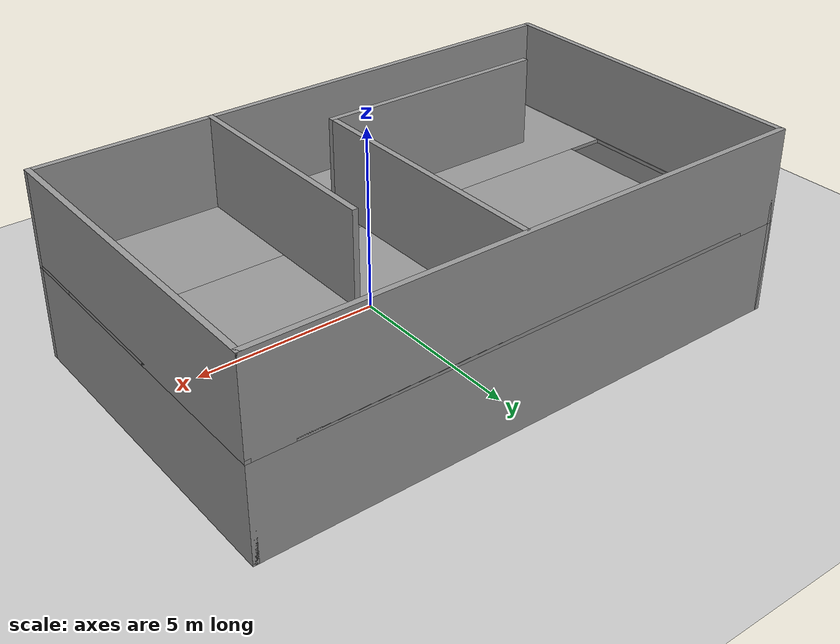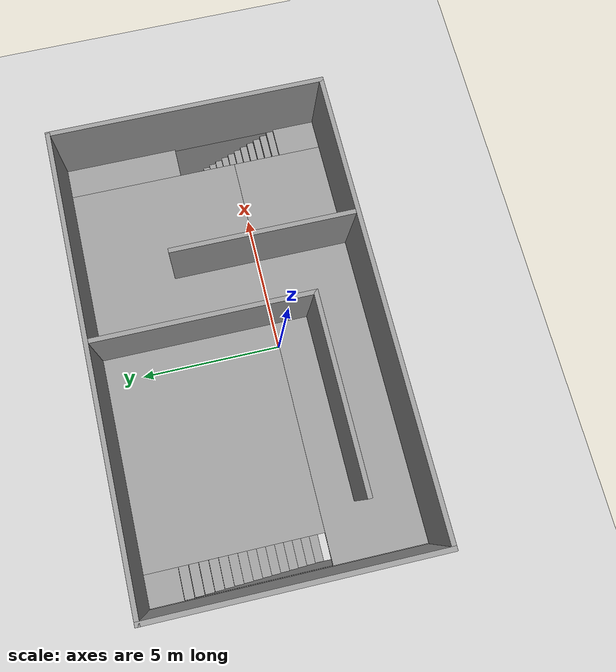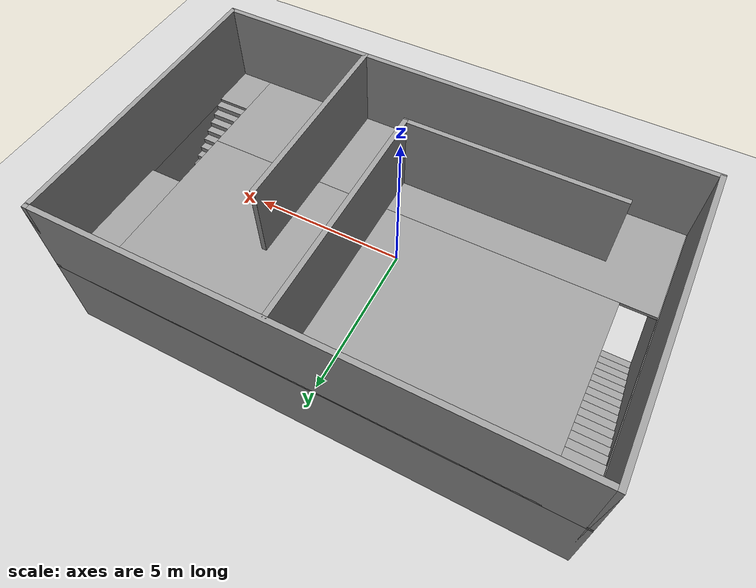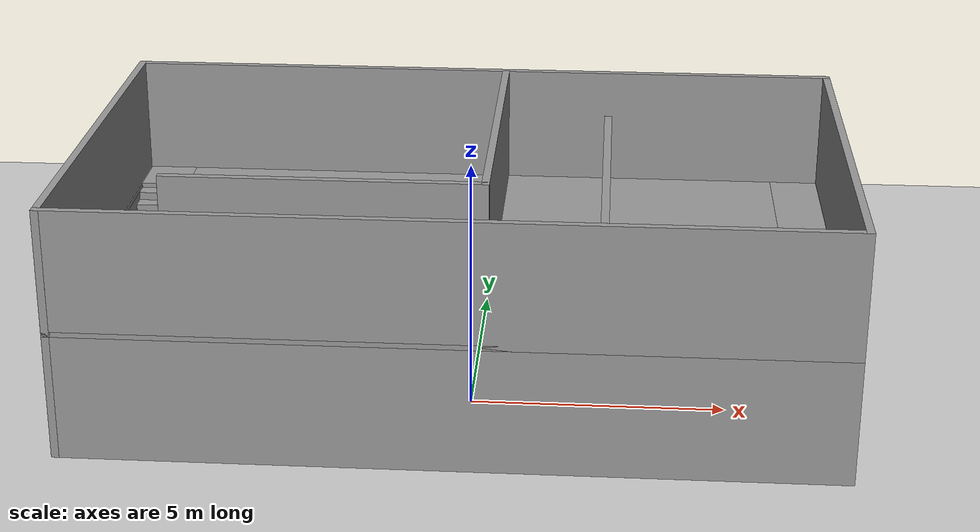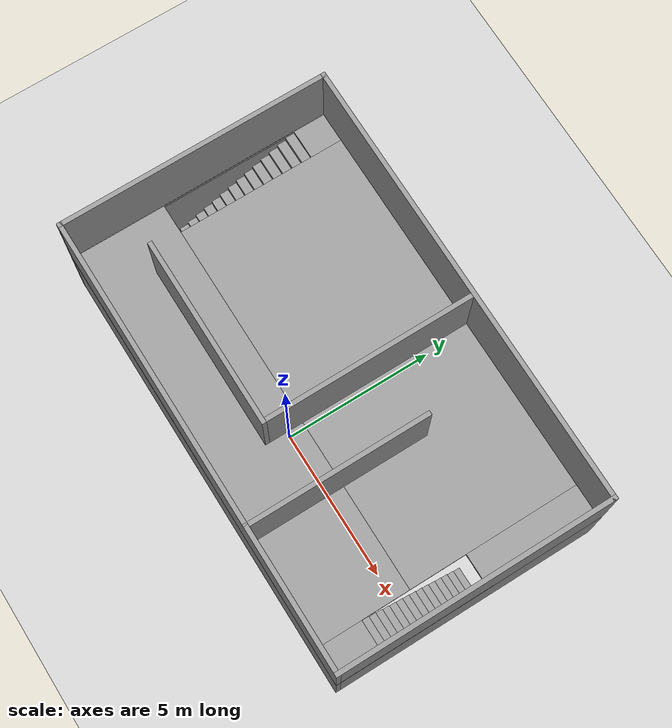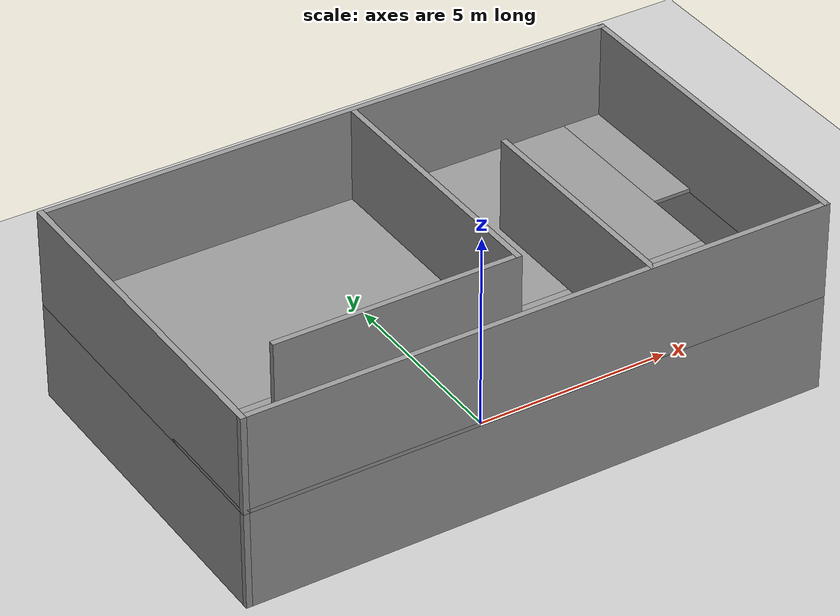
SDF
<sdf version="1.7">
 <world name="default">
  <light name="sun" type="directional">
   <pose>0 0 10 0 -0 0</pose>
   <diffuse>0.8 0.8 0.8 1</diffuse>
   <specular>0.2 0.2 0.2 1</specular>
   <attenuation>
    <range>1000</range>
    <constant>0.9</constant>
    <linear>0.01</linear>
    <quadratic>0.001</quadratic>
   </attenuation>
   <direction>-0.5 0.1 -0.9</direction>
   <spot><inner_angle>0</inner_angle><outer_angle>0</outer_angle><falloff>0</falloff></spot>
  </light>
  <model name="ground_plane">
   <static>1</static>
   <link name="link">
    <collision name="collision">
     <geometry><plane><normal>0 0 1</normal><size>100 100</size></plane></geometry>
     <surface>
      <contact><collide_bitmask>65535</collide_bitmask></contact>
      <friction><ode><mu>100</mu><mu2>50</mu2></ode></friction>
     </surface>
    </collision>
    <visual name="visual">
     <cast_shadows>0</cast_shadows>
     <geometry><plane><normal>0 0 1</normal><size>100 100</size></plane></geometry>
     <material>
      <script><uri>file://media/materials/scripts/gazebo.material</uri><name>Gazebo/Grey</name></script>
     </material>
    </visual>
   </link>
  </model>
  <gravity>0 0 -9.8</gravity>
  <magnetic_field>6e-06 2.3e-05 -4.2e-05</magnetic_field>
  <atmosphere type="adiabatic"/>
  <physics type="ode">
   <max_step_size>0.001</max_step_size>
   <real_time_factor>1</real_time_factor>
   <real_time_update_rate>1000</real_time_update_rate>
  </physics>
  <scene><ambient>0.4 0.4 0.4 1</ambient><background>0.7 0.7 0.7 1</background><shadows>1</shadows></scene>
  <spherical_coordinates>
   <surface_model>EARTH_WGS84</surface_model>
   <latitude_deg>0</latitude_deg>
   <longitude_deg>0</longitude_deg>
   <elevation>0</elevation>
   <heading_deg>0</heading_deg>
  </spherical_coordinates>
  <model name="test">
   <pose>-0.23166 1.60402 0 0 -0 0</pose>
   <link name="Floor_0">
    <pose>-0 0 2.5 0 -0 0</pose>
    <visual name="Floor_0_Visual_0">
     <pose>-7.41561 0 0.05 0 -0 0</pose>
     <geometry><box><size>0.16877 9 0.1</size></box></geometry>
     <material>
      <script><uri>file://media/materials/scripts/gazebo.material</uri><name>Gazebo/Grey</name></script>
      <ambient>1 1 1 1</ambient>
     </material>
     <meta><layer>1</layer></meta>
    </visual>
    <collision name="Floor_0_Collision_0">
     <geometry><box><size>0.16877 9 0.1</size></box></geometry>
     <pose>-7.41561 0 0.05 0 -0 0</pose>
    </collision>
    <visual name="Floor_0_Visual_1">
     <pose>-0.487797 -2.91638 0.05 0 -0 0</pose>
     <geometry><box><size>13.6869 3.16724 0.1</size></box></geometry>
     <material>
      <script><uri>file://media/materials/scripts/gazebo.material</uri><name>Gazebo/Grey</name></script>
      <ambient>1 1 1 1</ambient>
     </material>
     <meta><layer>1</layer></meta>
    </visual>
    <collision name="Floor_0_Collision_1">
     <geometry><box><size>13.6869 3.16724 0.1</size></box></geometry>
     <pose>-0.487797 -2.91638 0.05 0 -0 0</pose>
    </collision>
    <visual name="Floor_0_Visual_2">
     <pose>6.92782 -3.71836 0.05 0 -0 0</pose>
     <geometry><box><size>1.14436 1.56329 0.1</size></box></geometry>
     <material>
      <script><uri>file://media/materials/scripts/gazebo.material</uri><name>Gazebo/Grey</name></script>
      <ambient>1 1 1 1</ambient>
     </material>
     <meta><layer>1</layer></meta>
    </visual>
    <collision name="Floor_0_Collision_2">
     <geometry><box><size>1.14436 1.56329 0.1</size></box></geometry>
     <pose>6.92782 -3.71836 0.05 0 -0 0</pose>
    </collision>
    <visual name="Floor_0_Visual_3">
     <pose>7.42782 0.781643 0.05 0 -0 0</pose>
     <geometry><box><size>0.144364 7.43672 0.1</size></box></geometry>
     <material>
      <script><uri>file://media/materials/scripts/gazebo.material</uri><name>Gazebo/Grey</name></script>
      <ambient>1 1 1 1</ambient>
     </material>
     <meta><layer>1</layer></meta>
    </visual>
    <collision name="Floor_0_Collision_3">
     <geometry><box><size>0.144364 7.43672 0.1</size></box></geometry>
     <pose>7.42782 0.781643 0.05 0 -0 0</pose>
    </collision>
    <visual name="Floor_0_Visual_4">
     <pose>0.012203 1.58362 0.05 0 -0 0</pose>
     <geometry><box><size>12.6869 5.83276 0.1</size></box></geometry>
     <material>
      <script><uri>file://media/materials/scripts/gazebo.material</uri><name>Gazebo/Grey</name></script>
      <ambient>1 1 1 1</ambient>
     </material>
     <meta><layer>1</layer></meta>
    </visual>
    <collision name="Floor_0_Collision_4">
     <geometry><box><size>12.6869 5.83276 0.1</size></box></geometry>
     <pose>0.012203 1.58362 0.05 0 -0 0</pose>
    </collision>
    <visual name="Floor_0_Visual_5">
     <pose>6.85564 2.53164 0.05 0 -0 0</pose>
     <geometry><box><size>1 3.93671 0.1</size></box></geometry>
     <material>
      <script><uri>file://media/materials/scripts/gazebo.material</uri><name>Gazebo/Grey</name></script>
      <ambient>1 1 1 1</ambient>
     </material>
     <meta><layer>1</layer></meta>
    </visual>
    <collision name="Floor_0_Collision_5">
     <geometry><box><size>1 3.93671 0.1</size></box></geometry>
     <pose>6.85564 2.53164 0.05 0 -0 0</pose>
    </collision>
    <visual name="Floor_0_Visual_6">
     <pose>-6.83123 3.88778 0.05 0 -0 0</pose>
     <geometry><box><size>1 1.22443 0.1</size></box></geometry>
     <material>
      <script><uri>file://media/materials/scripts/gazebo.material</uri><name>Gazebo/Grey</name></script>
      <ambient>1 1 1 1</ambient>
     </material>
     <meta><layer>1</layer></meta>
    </visual>
    <collision name="Floor_0_Collision_6">
     <geometry><box><size>1 1.22443 0.1</size></box></geometry>
     <pose>-6.83123 3.88778 0.05 0 -0 0</pose>
    </collision>
   </link>
   <link name="Stairs_2">
    <visual name="Stairs_2_Visual_0">
     <pose>-6.83123 -1.17915 0.083333 0 -0 -3.14159</pose>
     <geometry><box><size>1 0.307221 0.166667</size></box></geometry>
     <material>
      <script><uri>file://media/materials/scripts/gazebo.material</uri><name>Gazebo/Grey</name></script>
      <ambient>1 1 1 1</ambient>
     </material>
     <meta><layer>0</layer></meta>
    </visual>
    <collision name="Stairs_2_Collision_0">
     <geometry><box><size>1 0.307221 0.166667</size></box></geometry>
     <pose>-6.83123 -1.17915 0.083333 0 -0 -3.14159</pose>
    </collision>
    <visual name="Stairs_2_Visual_1">
     <pose>-6.83123 -0.871925 0.25 0 -0 -3.14159</pose>
     <geometry><box><size>1 0.307221 0.166667</size></box></geometry>
     <material>
      <script><uri>file://media/materials/scripts/gazebo.material</uri><name>Gazebo/Grey</name></script>
      <ambient>1 1 1 1</ambient>
     </material>
     <meta><layer>0</layer></meta>
    </visual>
    <collision name="Stairs_2_Collision_1">
     <geometry><box><size>1 0.307221 0.166667</size></box></geometry>
     <pose>-6.83123 -0.871925 0.25 0 -0 -3.14159</pose>
    </collision>
    <visual name="Stairs_2_Visual_2">
     <pose>-6.83123 -0.564704 0.416667 0 -0 -3.14159</pose>
     <geometry><box><size>1 0.307221 0.166667</size></box></geometry>
     <material>
      <script><uri>file://media/materials/scripts/gazebo.material</uri><name>Gazebo/Grey</name></script>
      <ambient>1 1 1 1</ambient>
     </material>
     <meta><layer>0</layer></meta>
    </visual>
    <collision name="Stairs_2_Collision_2">
     <geometry><box><size>1 0.307221 0.166667</size></box></geometry>
     <pose>-6.83123 -0.564704 0.416667 0 -0 -3.14159</pose>
    </collision>
    <visual name="Stairs_2_Visual_3">
     <pose>-6.83123 -0.257482 0.583333 0 -0 -3.14159</pose>
     <geometry><box><size>1 0.307221 0.166667</size></box></geometry>
     <material>
      <script><uri>file://media/materials/scripts/gazebo.material</uri><name>Gazebo/Grey</name></script>
      <ambient>1 1 1 1</ambient>
     </material>
     <meta><layer>0</layer></meta>
    </visual>
    <collision name="Stairs_2_Collision_3">
     <geometry><box><size>1 0.307221 0.166667</size></box></geometry>
     <pose>-6.83123 -0.257482 0.583333 0 -0 -3.14159</pose>
    </collision>
    <visual name="Stairs_2_Visual_4">
     <pose>-6.83123 0.049739 0.75 0 -0 -3.14159</pose>
     <geometry><box><size>1 0.307221 0.166667</size></box></geometry>
     <material>
      <script><uri>file://media/materials/scripts/gazebo.material</uri><name>Gazebo/Grey</name></script>
      <ambient>1 1 1 1</ambient>
     </material>
     <meta><layer>0</layer></meta>
    </visual>
    <collision name="Stairs_2_Collision_4">
     <geometry><box><size>1 0.307221 0.166667</size></box></geometry>
     <pose>-6.83123 0.049739 0.75 0 -0 -3.14159</pose>
    </collision>
    <visual name="Stairs_2_Visual_5">
     <pose>-6.83123 0.356961 0.916667 0 -0 -3.14159</pose>
     <geometry><box><size>1 0.307221 0.166667</size></box></geometry>
     <material>
      <script><uri>file://media/materials/scripts/gazebo.material</uri><name>Gazebo/Grey</name></script>
      <ambient>1 1 1 1</ambient>
     </material>
     <meta><layer>0</layer></meta>
    </visual>
    <collision name="Stairs_2_Collision_5">
     <geometry><box><size>1 0.307221 0.166667</size></box></geometry>
     <pose>-6.83123 0.356961 0.916667 0 -0 -3.14159</pose>
    </collision>
    <visual name="Stairs_2_Visual_6">
     <pose>-6.83123 0.664182 1.08333 0 -0 -3.14159</pose>
     <geometry><box><size>1 0.307221 0.166667</size></box></geometry>
     <material>
      <script><uri>file://media/materials/scripts/gazebo.material</uri><name>Gazebo/Grey</name></script>
      <ambient>1 1 1 1</ambient>
     </material>
     <meta><layer>0</layer></meta>
    </visual>
    <collision name="Stairs_2_Collision_6">
     <geometry><box><size>1 0.307221 0.166667</size></box></geometry>
     <pose>-6.83123 0.664182 1.08333 0 -0 -3.14159</pose>
    </collision>
    <visual name="Stairs_2_Visual_7">
     <pose>-6.83123 0.971404 1.25 0 -0 -3.14159</pose>
     <geometry><box><size>1 0.307221 0.166667</size></box></geometry>
     <material>
      <script><uri>file://media/materials/scripts/gazebo.material</uri><name>Gazebo/Grey</name></script>
      <ambient>1 1 1 1</ambient>
     </material>
     <meta><layer>0</layer></meta>
    </visual>
    <collision name="Stairs_2_Collision_7">
     <geometry><box><size>1 0.307221 0.166667</size></box></geometry>
     <pose>-6.83123 0.971404 1.25 0 -0 -3.14159</pose>
    </collision>
    <visual name="Stairs_2_Visual_8">
     <pose>-6.83123 1.27862 1.41667 0 -0 -3.14159</pose>
     <geometry><box><size>1 0.307221 0.166667</size></box></geometry>
     <material>
      <script><uri>file://media/materials/scripts/gazebo.material</uri><name>Gazebo/Grey</name></script>
      <ambient>1 1 1 1</ambient>
     </material>
     <meta><layer>0</layer></meta>
    </visual>
    <collision name="Stairs_2_Collision_8">
     <geometry><box><size>1 0.307221 0.166667</size></box></geometry>
     <pose>-6.83123 1.27862 1.41667 0 -0 -3.14159</pose>
    </collision>
    <visual name="Stairs_2_Visual_9">
     <pose>-6.83123 1.58585 1.58333 0 -0 -3.14159</pose>
     <geometry><box><size>1 0.307221 0.166667</size></box></geometry>
     <material>
      <script><uri>file://media/materials/scripts/gazebo.material</uri><name>Gazebo/Grey</name></script>
      <ambient>1 1 1 1</ambient>
     </material>
     <meta><layer>0</layer></meta>
    </visual>
    <collision name="Stairs_2_Collision_9">
     <geometry><box><size>1 0.307221 0.166667</size></box></geometry>
     <pose>-6.83123 1.58585 1.58333 0 -0 -3.14159</pose>
    </collision>
    <visual name="Stairs_2_Visual_10">
     <pose>-6.83123 1.89307 1.75 0 -0 -3.14159</pose>
     <geometry><box><size>1 0.307221 0.166667</size></box></geometry>
     <material>
      <script><uri>file://media/materials/scripts/gazebo.material</uri><name>Gazebo/Grey</name></script>
      <ambient>1 1 1 1</ambient>
     </material>
     <meta><layer>0</layer></meta>
    </visual>
    <collision name="Stairs_2_Collision_10">
     <geometry><box><size>1 0.307221 0.166667</size></box></geometry>
     <pose>-6.83123 1.89307 1.75 0 -0 -3.14159</pose>
    </collision>
    <visual name="Stairs_2_Visual_11">
     <pose>-6.83123 2.20029 1.91667 0 -0 -3.14159</pose>
     <geometry><box><size>1 0.307221 0.166667</size></box></geometry>
     <material>
      <script><uri>file://media/materials/scripts/gazebo.material</uri><name>Gazebo/Grey</name></script>
      <ambient>1 1 1 1</ambient>
     </material>
     <meta><layer>0</layer></meta>
    </visual>
    <collision name="Stairs_2_Collision_11">
     <geometry><box><size>1 0.307221 0.166667</size></box></geometry>
     <pose>-6.83123 2.20029 1.91667 0 -0 -3.14159</pose>
    </collision>
    <visual name="Stairs_2_Visual_12">
     <pose>-6.83123 2.50751 2.08333 0 -0 -3.14159</pose>
     <geometry><box><size>1 0.307221 0.166667</size></box></geometry>
     <material>
      <script><uri>file://media/materials/scripts/gazebo.material</uri><name>Gazebo/Grey</name></script>
      <ambient>1 1 1 1</ambient>
     </material>
     <meta><layer>0</layer></meta>
    </visual>
    <collision name="Stairs_2_Collision_12">
     <geometry><box><size>1 0.307221 0.166667</size></box></geometry>
     <pose>-6.83123 2.50751 2.08333 0 -0 -3.14159</pose>
    </collision>
    <visual name="Stairs_2_Visual_13">
     <pose>-6.83123 2.81473 2.25 0 -0 -3.14159</pose>
     <geometry><box><size>1 0.307221 0.166667</size></box></geometry>
     <material>
      <script><uri>file://media/materials/scripts/gazebo.material</uri><name>Gazebo/Grey</name></script>
      <ambient>1 1 1 1</ambient>
     </material>
     <meta><layer>0</layer></meta>
    </visual>
    <collision name="Stairs_2_Collision_13">
     <geometry><box><size>1 0.307221 0.166667</size></box></geometry>
     <pose>-6.83123 2.81473 2.25 0 -0 -3.14159</pose>
    </collision>
    <visual name="Stairs_2_Visual_14">
     <pose>-6.83123 3.12195 2.41667 0 -0 -3.14159</pose>
     <geometry><box><size>1 0.307221 0.166667</size></box></geometry>
     <material>
      <script><uri>file://media/materials/scripts/gazebo.material</uri><name>Gazebo/Grey</name></script>
      <ambient>1 1 1 1</ambient>
     </material>
     <meta><layer>0</layer></meta>
    </visual>
    <collision name="Stairs_2_Collision_14">
     <geometry><box><size>1 0.307221 0.166667</size></box></geometry>
     <pose>-6.83123 3.12195 2.41667 0 -0 -3.14159</pose>
    </collision>
   </link>
   <link name="Stairs_3">
    <visual name="Stairs_3_Visual_0">
     <pose>6.85564 0.446619 0.083333 0 -0 0</pose>
     <geometry><box><size>1 0.233333 0.166667</size></box></geometry>
     <material>
      <script><uri>file://media/materials/scripts/gazebo.material</uri><name>Gazebo/Grey</name></script>
      <ambient>1 1 1 1</ambient>
     </material>
     <meta><layer>0</layer></meta>
    </visual>
    <collision name="Stairs_3_Collision_0">
     <geometry><box><size>1 0.233333 0.166667</size></box></geometry>
     <pose>6.85564 0.446619 0.083333 0 -0 0</pose>
    </collision>
    <visual name="Stairs_3_Visual_1">
     <pose>6.85564 0.213285 0.25 0 -0 0</pose>
     <geometry><box><size>1 0.233333 0.166667</size></box></geometry>
     <material>
      <script><uri>file://media/materials/scripts/gazebo.material</uri><name>Gazebo/Grey</name></script>
      <ambient>1 1 1 1</ambient>
     </material>
     <meta><layer>0</layer></meta>
    </visual>
    <collision name="Stairs_3_Collision_1">
     <geometry><box><size>1 0.233333 0.166667</size></box></geometry>
     <pose>6.85564 0.213285 0.25 0 -0 0</pose>
    </collision>
    <visual name="Stairs_3_Visual_2">
     <pose>6.85564 -0.020048 0.416667 0 -0 0</pose>
     <geometry><box><size>1 0.233333 0.166667</size></box></geometry>
     <material>
      <script><uri>file://media/materials/scripts/gazebo.material</uri><name>Gazebo/Grey</name></script>
      <ambient>1 1 1 1</ambient>
     </material>
     <meta><layer>0</layer></meta>
    </visual>
    <collision name="Stairs_3_Collision_2">
     <geometry><box><size>1 0.233333 0.166667</size></box></geometry>
     <pose>6.85564 -0.020048 0.416667 0 -0 0</pose>
    </collision>
    <visual name="Stairs_3_Visual_3">
     <pose>6.85564 -0.253381 0.583333 0 -0 0</pose>
     <geometry><box><size>1 0.233333 0.166667</size></box></geometry>
     <material>
      <script><uri>file://media/materials/scripts/gazebo.material</uri><name>Gazebo/Grey</name></script>
      <ambient>1 1 1 1</ambient>
     </material>
     <meta><layer>0</layer></meta>
    </visual>
    <collision name="Stairs_3_Collision_3">
     <geometry><box><size>1 0.233333 0.166667</size></box></geometry>
     <pose>6.85564 -0.253381 0.583333 0 -0 0</pose>
    </collision>
    <visual name="Stairs_3_Visual_4">
     <pose>6.85564 -0.486715 0.75 0 -0 0</pose>
     <geometry><box><size>1 0.233333 0.166667</size></box></geometry>
     <material>
      <script><uri>file://media/materials/scripts/gazebo.material</uri><name>Gazebo/Grey</name></script>
      <ambient>1 1 1 1</ambient>
     </material>
     <meta><layer>0</layer></meta>
    </visual>
    <collision name="Stairs_3_Collision_4">
     <geometry><box><size>1 0.233333 0.166667</size></box></geometry>
     <pose>6.85564 -0.486715 0.75 0 -0 0</pose>
    </collision>
    <visual name="Stairs_3_Visual_5">
     <pose>6.85564 -0.720048 0.916667 0 -0 0</pose>
     <geometry><box><size>1 0.233333 0.166667</size></box></geometry>
     <material>
      <script><uri>file://media/materials/scripts/gazebo.material</uri><name>Gazebo/Grey</name></script>
      <ambient>1 1 1 1</ambient>
     </material>
     <meta><layer>0</layer></meta>
    </visual>
    <collision name="Stairs_3_Collision_5">
     <geometry><box><size>1 0.233333 0.166667</size></box></geometry>
     <pose>6.85564 -0.720048 0.916667 0 -0 0</pose>
    </collision>
    <visual name="Stairs_3_Visual_6">
     <pose>6.85564 -0.953381 1.08333 0 -0 0</pose>
     <geometry><box><size>1 0.233333 0.166667</size></box></geometry>
     <material>
      <script><uri>file://media/materials/scripts/gazebo.material</uri><name>Gazebo/Grey</name></script>
      <ambient>1 1 1 1</ambient>
     </material>
     <meta><layer>0</layer></meta>
    </visual>
    <collision name="Stairs_3_Collision_6">
     <geometry><box><size>1 0.233333 0.166667</size></box></geometry>
     <pose>6.85564 -0.953381 1.08333 0 -0 0</pose>
    </collision>
    <visual name="Stairs_3_Visual_7">
     <pose>6.85564 -1.18671 1.25 0 -0 0</pose>
     <geometry><box><size>1 0.233333 0.166667</size></box></geometry>
     <material>
      <script><uri>file://media/materials/scripts/gazebo.material</uri><name>Gazebo/Grey</name></script>
      <ambient>1 1 1 1</ambient>
     </material>
     <meta><layer>0</layer></meta>
    </visual>
    <collision name="Stairs_3_Collision_7">
     <geometry><box><size>1 0.233333 0.166667</size></box></geometry>
     <pose>6.85564 -1.18671 1.25 0 -0 0</pose>
    </collision>
    <visual name="Stairs_3_Visual_8">
     <pose>6.85564 -1.42005 1.41667 0 -0 0</pose>
     <geometry><box><size>1 0.233333 0.166667</size></box></geometry>
     <material>
      <script><uri>file://media/materials/scripts/gazebo.material</uri><name>Gazebo/Grey</name></script>
      <ambient>1 1 1 1</ambient>
     </material>
     <meta><layer>0</layer></meta>
    </visual>
    <collision name="Stairs_3_Collision_8">
     <geometry><box><size>1 0.233333 0.166667</size></box></geometry>
     <pose>6.85564 -1.42005 1.41667 0 -0 0</pose>
    </collision>
    <visual name="Stairs_3_Visual_9">
     <pose>6.85564 -1.65338 1.58333 0 -0 0</pose>
     <geometry><box><size>1 0.233333 0.166667</size></box></geometry>
     <material>
      <script><uri>file://media/materials/scripts/gazebo.material</uri><name>Gazebo/Grey</name></script>
      <ambient>1 1 1 1</ambient>
     </material>
     <meta><layer>0</layer></meta>
    </visual>
    <collision name="Stairs_3_Collision_9">
     <geometry><box><size>1 0.233333 0.166667</size></box></geometry>
     <pose>6.85564 -1.65338 1.58333 0 -0 0</pose>
    </collision>
    <visual name="Stairs_3_Visual_10">
     <pose>6.85564 -1.88671 1.75 0 -0 0</pose>
     <geometry><box><size>1 0.233333 0.166667</size></box></geometry>
     <material>
      <script><uri>file://media/materials/scripts/gazebo.material</uri><name>Gazebo/Grey</name></script>
      <ambient>1 1 1 1</ambient>
     </material>
     <meta><layer>0</layer></meta>
    </visual>
    <collision name="Stairs_3_Collision_10">
     <geometry><box><size>1 0.233333 0.166667</size></box></geometry>
     <pose>6.85564 -1.88671 1.75 0 -0 0</pose>
    </collision>
    <visual name="Stairs_3_Visual_11">
     <pose>6.85564 -2.12005 1.91667 0 -0 0</pose>
     <geometry><box><size>1 0.233333 0.166667</size></box></geometry>
     <material>
      <script><uri>file://media/materials/scripts/gazebo.material</uri><name>Gazebo/Grey</name></script>
      <ambient>1 1 1 1</ambient>
     </material>
     <meta><layer>0</layer></meta>
    </visual>
    <collision name="Stairs_3_Collision_11">
     <geometry><box><size>1 0.233333 0.166667</size></box></geometry>
     <pose>6.85564 -2.12005 1.91667 0 -0 0</pose>
    </collision>
    <visual name="Stairs_3_Visual_12">
     <pose>6.85564 -2.35338 2.08333 0 -0 0</pose>
     <geometry><box><size>1 0.233333 0.166667</size></box></geometry>
     <material>
      <script><uri>file://media/materials/scripts/gazebo.material</uri><name>Gazebo/Grey</name></script>
      <ambient>1 1 1 1</ambient>
     </material>
     <meta><layer>0</layer></meta>
    </visual>
    <collision name="Stairs_3_Collision_12">
     <geometry><box><size>1 0.233333 0.166667</size></box></geometry>
     <pose>6.85564 -2.35338 2.08333 0 -0 0</pose>
    </collision>
    <visual name="Stairs_3_Visual_13">
     <pose>6.85564 -2.58671 2.25 0 -0 0</pose>
     <geometry><box><size>1 0.233333 0.166667</size></box></geometry>
     <material>
      <script><uri>file://media/materials/scripts/gazebo.material</uri><name>Gazebo/Grey</name></script>
      <ambient>1 1 1 1</ambient>
     </material>
     <meta><layer>0</layer></meta>
    </visual>
    <collision name="Stairs_3_Collision_13">
     <geometry><box><size>1 0.233333 0.166667</size></box></geometry>
     <pose>6.85564 -2.58671 2.25 0 -0 0</pose>
    </collision>
    <visual name="Stairs_3_Visual_14">
     <pose>6.85564 -2.82005 2.41667 0 -0 0</pose>
     <geometry><box><size>1 0.233333 0.166667</size></box></geometry>
     <material>
      <script><uri>file://media/materials/scripts/gazebo.material</uri><name>Gazebo/Grey</name></script>
      <ambient>1 1 1 1</ambient>
     </material>
     <meta><layer>0</layer></meta>
    </visual>
    <collision name="Stairs_3_Collision_14">
     <geometry><box><size>1 0.233333 0.166667</size></box></geometry>
     <pose>6.85564 -2.82005 2.41667 0 -0 0</pose>
    </collision>
   </link>
   <link name="Wall_10">
    <collision name="Wall_10_Collision">
     <geometry><box><size>9 0.15 2.5</size></box></geometry>
     <pose>0 0 1.25 0 -0 0</pose>
    </collision>
    <visual name="Wall_10_Visual">
     <pose>0 0 1.25 0 -0 0</pose>
     <geometry><box><size>9 0.15 2.5</size></box></geometry>
     <material>
      <script><uri>file://media/materials/scripts/gazebo.material</uri><name>Gazebo/Grey</name></script>
      <ambient>1 1 1 1</ambient>
     </material>
     <meta><layer>1</layer></meta>
    </visual>
    <pose>-7.425 0 2.5 0 -0 1.5708</pose>
   </link>
   <link name="Wall_11">
    <collision name="Wall_11_Collision">
     <geometry><box><size>15 0.15 2.5</size></box></geometry>
     <pose>0 0 1.25 0 -0 0</pose>
    </collision>
    <visual name="Wall_11_Visual">
     <pose>0 0 1.25 0 -0 0</pose>
     <geometry><box><size>15 0.15 2.5</size></box></geometry>
     <material>
      <script><uri>file://media/materials/scripts/gazebo.material</uri><name>Gazebo/Grey</name></script>
      <ambient>1 1 1 1</ambient>
     </material>
     <meta><layer>1</layer></meta>
    </visual>
    <pose>-0 4.425 2.5 0 -0 0</pose>
   </link>
   <link name="Wall_12">
    <collision name="Wall_12_Collision">
     <geometry><box><size>9 0.15 2.5</size></box></geometry>
     <pose>0 0 1.25 0 -0 0</pose>
    </collision>
    <visual name="Wall_12_Visual">
     <pose>0 0 1.25 0 -0 0</pose>
     <geometry><box><size>9 0.15 2.5</size></box></geometry>
     <material>
      <script><uri>file://media/materials/scripts/gazebo.material</uri><name>Gazebo/Grey</name></script>
      <ambient>1 1 1 1</ambient>
     </material>
     <meta><layer>1</layer></meta>
    </visual>
    <pose>7.425 0 2.5 0 -0 -1.5708</pose>
   </link>
   <link name="Wall_13">
    <collision name="Wall_13_Collision">
     <geometry><box><size>15 0.15 2.5</size></box></geometry>
     <pose>0 0 1.25 0 -0 0</pose>
    </collision>
    <visual name="Wall_13_Visual">
     <pose>0 0 1.25 0 -0 0</pose>
     <geometry><box><size>15 0.15 2.5</size></box></geometry>
     <material>
      <script><uri>file://media/materials/scripts/gazebo.material</uri><name>Gazebo/Grey</name></script>
      <ambient>1 1 1 1</ambient>
     </material>
     <meta><layer>1</layer></meta>
    </visual>
    <pose>-0 -4.425 2.5 0 -0 3.14159</pose>
   </link>
   <link name="Wall_21">
    <collision name="Wall_21_Collision">
     <geometry><box><size>6 0.15 2.5</size></box></geometry>
     <pose>0 0 1.25 0 -0 0</pose>
    </collision>
    <visual name="Wall_21_Visual">
     <pose>0 0 1.25 0 -0 0</pose>
     <geometry><box><size>6 0.15 2.5</size></box></geometry>
     <material>
      <script><uri>file://media/materials/scripts/gazebo.material</uri><name>Gazebo/Grey</name></script>
      <ambient>1 1 1 1</ambient>
     </material>
     <meta><layer>1</layer></meta>
    </visual>
    <pose>2.79141 -1.49486 2.5 0 -0 -1.5708</pose>
   </link>
   <link name="Wall_23">
    <collision name="Wall_23_Collision">
     <geometry><box><size>7 0.15 2.5</size></box></geometry>
     <pose>0 0 1.25 0 -0 0</pose>
    </collision>
    <visual name="Wall_23_Visual">
     <pose>0 0 1.25 0 -0 0</pose>
     <geometry><box><size>7 0.15 2.5</size></box></geometry>
     <material>
      <script><uri>file://media/materials/scripts/gazebo.material</uri><name>Gazebo/Grey</name></script>
      <ambient>1 1 1 1</ambient>
     </material>
     <meta><layer>1</layer></meta>
    </visual>
    <pose>0.558803 0.901491 2.5 0 -0 -1.5708</pose>
   </link>
   <link name="Wall_25">
    <collision name="Wall_25_Collision">
     <geometry><box><size>6.25 0.15 2.5</size></box></geometry>
     <pose>0 0 1.25 0 -0 0</pose>
    </collision>
    <visual name="Wall_25_Visual">
     <pose>0 0 1.25 0 -0 0</pose>
     <geometry><box><size>6.25 0.15 2.5</size></box></geometry>
     <material>
      <script><uri>file://media/materials/scripts/gazebo.material</uri><name>Gazebo/Grey</name></script>
      <ambient>1 1 1 1</ambient>
     </material>
     <meta><layer>1</layer></meta>
    </visual>
    <pose>-2.4912 -2.52351 2.5 0 -0 3.14159</pose>
   </link>
   <link name="Wall_5">
    <collision name="Wall_5_Collision">
     <geometry><box><size>9 0.15 2.5</size></box></geometry>
     <pose>0 0 1.25 0 -0 0</pose>
    </collision>
    <visual name="Wall_5_Visual">
     <pose>0 0 1.25 0 -0 0</pose>
     <geometry><box><size>9 0.15 2.5</size></box></geometry>
     <material>
      <script><uri>file://media/materials/scripts/gazebo.material</uri><name>Gazebo/Grey</name></script>
      <ambient>1 1 1 1</ambient>
     </material>
     <meta><layer>0</layer></meta>
    </visual>
    <pose>-7.425 0 0 0 -0 1.5708</pose>
   </link>
   <link name="Wall_6">
    <collision name="Wall_6_Collision">
     <geometry><box><size>15 0.15 2.5</size></box></geometry>
     <pose>0 0 1.25 0 -0 0</pose>
    </collision>
    <visual name="Wall_6_Visual">
     <pose>0 0 1.25 0 -0 0</pose>
     <geometry><box><size>15 0.15 2.5</size></box></geometry>
     <material>
      <script><uri>file://media/materials/scripts/gazebo.material</uri><name>Gazebo/Grey</name></script>
      <ambient>1 1 1 1</ambient>
     </material>
     <meta><layer>0</layer></meta>
    </visual>
    <pose>-0 4.425 0 0 -0 0</pose>
   </link>
   <link name="Wall_7">
    <collision name="Wall_7_Collision">
     <geometry><box><size>9 0.15 2.5</size></box></geometry>
     <pose>0 0 1.25 0 -0 0</pose>
    </collision>
    <visual name="Wall_7_Visual">
     <pose>0 0 1.25 0 -0 0</pose>
     <geometry><box><size>9 0.15 2.5</size></box></geometry>
     <material>
      <script><uri>file://media/materials/scripts/gazebo.material</uri><name>Gazebo/Grey</name></script>
      <ambient>1 1 1 1</ambient>
     </material>
     <meta><layer>0</layer></meta>
    </visual>
    <pose>7.425 0 0 0 -0 -1.5708</pose>
   </link>
   <link name="Wall_8">
    <collision name="Wall_8_Collision">
     <geometry><box><size>15 0.15 2.5</size></box></geometry>
     <pose>0 0 1.25 0 -0 0</pose>
    </collision>
    <visual name="Wall_8_Visual">
     <pose>0 0 1.25 0 -0 0</pose>
     <geometry><box><size>15 0.15 2.5</size></box></geometry>
     <material>
      <script><uri>file://media/materials/scripts/gazebo.material</uri><name>Gazebo/Grey</name></script>
      <ambient>1 1 1 1</ambient>
     </material>
     <meta><layer>0</layer></meta>
    </visual>
    <pose>-0 -4.425 0 0 -0 3.14159</pose>
   </link>
   <static>1</static>
  </model>
  <model name="unit_box">
   <pose>-2.56973 3 0.499995 -1e-05 -0 -0</pose>
   <link name="link">
    <inertial>
     <mass>1</mass>
     <inertia>
      <ixx>0.166667</ixx>
      <ixy>0</ixy>
      <ixz>0</ixz>
      <iyy>0.166667</iyy>
      <iyz>0</iyz>
      <izz>0.166667</izz>
     </inertia>
    </inertial>
    <collision name="collision"><geometry><box><size>1 1 1</size></box></geometry></collision>
    <visual name="visual">
     <geometry><box><size>1 1 1</size></box></geometry>
     <material>
      <script><name>Gazebo/Grey</name><uri>file://media/materials/scripts/gazebo.material</uri></script>
     </material>
    </visual>
   </link>
  </model>
  <model name="unit_box_0">
   <pose>-0.05084 3.15857 0.499995 0 1e-05 0</pose>
   <link name="link">
    <inertial>
     <mass>1</mass>
     <inertia>
      <ixx>0.166667</ixx>
      <ixy>0</ixy>
      <ixz>0</ixz>
      <iyy>0.166667</iyy>
      <iyz>0</iyz>
      <izz>0.166667</izz>
     </inertia>
    </inertial>
    <collision name="collision"><geometry><box><size>1 1 1</size></box></geometry></collision>
    <visual name="visual">
     <geometry><box><size>1 1 1</size></box></geometry>
     <material>
      <script><name>Gazebo/Grey</name><uri>file://media/materials/scripts/gazebo.material</uri></script>
     </material>
    </visual>
   </link>
  </model>
  <model name="unit_cylinder">
   <pose>0.017735 0.514496 0.499993 -3e-06 -3e-06 0</pose>
   <link name="link">
    <inertial>
     <mass>1</mass>
     <inertia><ixx>0.145833</ixx><ixy>0</ixy><ixz>0</ixz><iyy>0.145833</iyy><iyz>0</iyz><izz>0.125</izz></inertia>
    </inertial>
    <collision name="collision">
     <geometry><cylinder><radius>0.5</radius><length>1</length></cylinder></geometry>
    </collision>
    <visual name="visual">
     <geometry><cylinder><radius>0.5</radius><length>1</length></cylinder></geometry>
     <material>
      <script><name>Gazebo/Grey</name><uri>file://media/materials/scripts/gazebo.material</uri></script>
     </material>
    </visual>
   </link>
  </model>
  <model name="unit_cylinder_0">
   <pose>2.78674 3.31366 0.499997 3e-06 4e-06 -0</pose>
   <link name="link">
    <inertial>
     <mass>1</mass>
     <inertia><ixx>0.145833</ixx><ixy>0</ixy><ixz>0</ixz><iyy>0.145833</iyy><iyz>0</iyz><izz>0.125</izz></inertia>
    </inertial>
    <collision name="collision">
     <geometry><cylinder><radius>0.5</radius><length>1</length></cylinder></geometry>
    </collision>
    <visual name="visual">
     <geometry><cylinder><radius>0.5</radius><length>1</length></cylinder></geometry>
     <material>
      <script><name>Gazebo/Grey</name><uri>file://media/materials/scripts/gazebo.material</uri></script>
     </material>
    </visual>
   </link>
  </model>
  <model name="unit_cylinder_1">
   <pose>2.76674 2.29898 0.499993 -3e-06 -4e-06 -0</pose>
   <link name="link">
    <inertial>
     <mass>1</mass>
     <inertia><ixx>0.145833</ixx><ixy>0</ixy><ixz>0</ixz><iyy>0.145833</iyy><iyz>0</iyz><izz>0.125</izz></inertia>
    </inertial>
    <collision name="collision">
     <geometry><cylinder><radius>0.5</radius><length>1</length></cylinder></geometry>
    </collision>
    <visual name="visual">
     <geometry><cylinder><radius>0.5</radius><length>1</length></cylinder></geometry>
     <material>
      <script><name>Gazebo/Grey</name><uri>file://media/materials/scripts/gazebo.material</uri></script>
     </material>
    </visual>
   </link>
  </model>
  <model name="unit_cylinder_2">
   <pose>2.64387 1.30566 0.499997 3e-06 4e-06 -0</pose>
   <link name="link">
    <inertial>
     <mass>1</mass>
     <inertia><ixx>0.145833</ixx><ixy>0</ixy><ixz>0</ixz><iyy>0.145833</iyy><iyz>0</iyz><izz>0.125</izz></inertia>
    </inertial>
    <collision name="collision">
     <geometry><cylinder><radius>0.5</radius><length>1</length></cylinder></geometry>
    </collision>
    <visual name="visual">
     <geometry><cylinder><radius>0.5</radius><length>1</length></cylinder></geometry>
     <material>
      <script><name>Gazebo/Grey</name><uri>file://media/materials/scripts/gazebo.material</uri></script>
     </material>
    </visual>
   </link>
  </model>
 </world>
</sdf>
